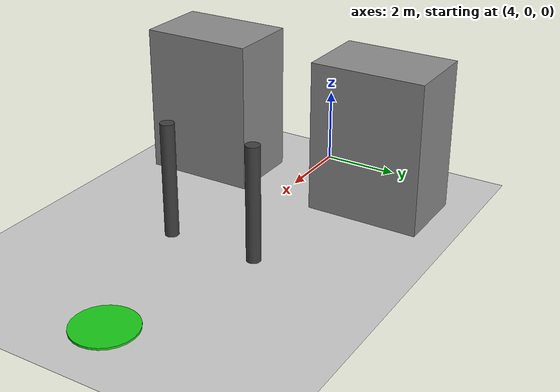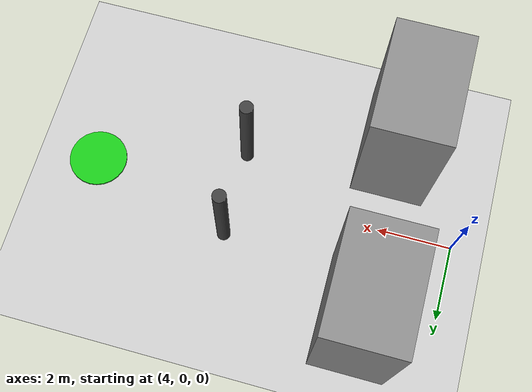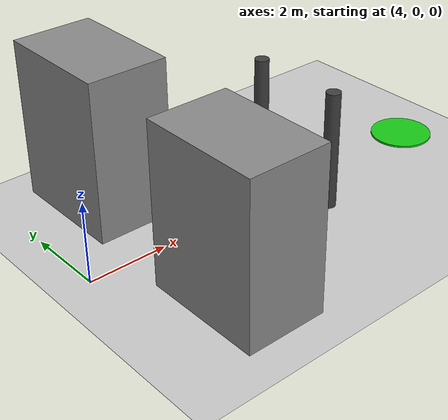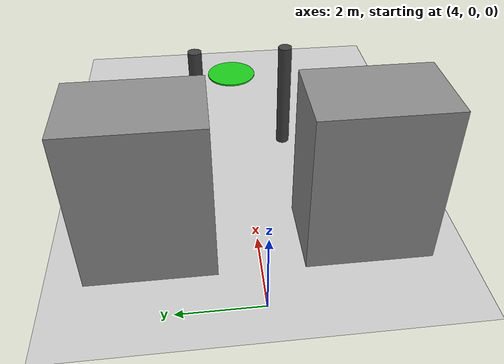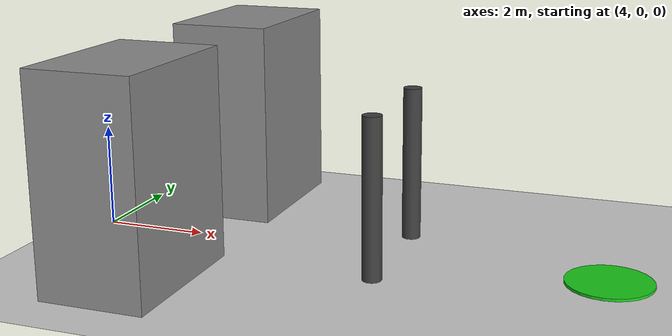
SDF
<?xml version="1.0" ?>
<sdf version="1.6">
  <world name="default">

    <include>
      <uri>model://sun</uri>
    </include>

    <include>
      <uri>model://ground_plane</uri>
    </include>

    <physics name="default_physics" default="0" type="ode">
      <gravity>0 0 -9.8066</gravity>
      <ode>
        <solver>
          <type>quick</type>
          <iters>10</iters>
          <sor>1.3</sor>
        </solver>
        <constraints>
          <cfm>0</cfm>
          <erp>0.2</erp>
          <contact_max_correcting_vel>100</contact_max_correcting_vel>
          <contact_surface_layer>0.001</contact_surface_layer>
        </constraints>
      </ode>
      <real_time_update_rate>250</real_time_update_rate>
      <max_step_size>0.004</max_step_size>
    </physics>

    <model name="building_left">
      <static>true</static>
      <pose>6 2.5 2.0 0 0 0</pose>
      <link name="link">
        <collision name="collision">
          <geometry>
            <box><size>2.0 3.0 4.0</size></box>
          </geometry>
        </collision>
        <visual name="visual">
          <geometry>
            <box><size>2.0 3.0 4.0</size></box>
          </geometry>
          <material>
            <ambient>0.45 0.45 0.45 1</ambient>
            <diffuse>0.55 0.55 0.55 1</diffuse>
          </material>
        </visual>
      </link>
    </model>

    <model name="building_right">
      <static>true</static>
      <pose>6 -2.5 2.0 0 0 0</pose>
      <link name="link">
        <collision name="collision">
          <geometry>
            <box><size>2.0 3.0 4.0</size></box>
          </geometry>
        </collision>
        <visual name="visual">
          <geometry>
            <box><size>2.0 3.0 4.0</size></box>
          </geometry>
          <material>
            <ambient>0.45 0.45 0.45 1</ambient>
            <diffuse>0.55 0.55 0.55 1</diffuse>
          </material>
        </visual>
      </link>
    </model>

    <model name="pole_1">
      <static>true</static>
      <pose>10 1.2 1.5 0 0 0</pose>
      <link name="link">
        <collision name="collision">
          <geometry>
            <cylinder>
              <radius>0.18</radius>
              <length>3.0</length>
            </cylinder>
          </geometry>
        </collision>
        <visual name="visual">
          <geometry>
            <cylinder>
              <radius>0.18</radius>
              <length>3.0</length>
            </cylinder>
          </geometry>
          <material>
            <ambient>0.2 0.2 0.2 1</ambient>
            <diffuse>0.25 0.25 0.25 1</diffuse>
          </material>
        </visual>
      </link>
    </model>

    <model name="pole_2">
      <static>true</static>
      <pose>10 -1.2 1.5 0 0 0</pose>
      <link name="link">
        <collision name="collision">
          <geometry>
            <cylinder>
              <radius>0.18</radius>
              <length>3.0</length>
            </cylinder>
          </geometry>
        </collision>
        <visual name="visual">
          <geometry>
            <cylinder>
              <radius>0.18</radius>
              <length>3.0</length>
            </cylinder>
          </geometry>
          <material>
            <ambient>0.2 0.2 0.2 1</ambient>
            <diffuse>0.25 0.25 0.25 1</diffuse>
          </material>
        </visual>
      </link>
    </model>

    <model name="delivery_pad">
      <static>true</static>
      <pose>14 0 0.025 0 0 0</pose>
      <link name="link">
        <collision name="collision">
          <geometry>
            <cylinder>
              <radius>0.8</radius>
              <length>0.05</length>
            </cylinder>
          </geometry>
        </collision>
        <visual name="visual">
          <geometry>
            <cylinder>
              <radius>0.8</radius>
              <length>0.05</length>
            </cylinder>
          </geometry>
          <material>
            <ambient>0.1 0.6 0.1 1</ambient>
            <diffuse>0.1 0.8 0.1 1</diffuse>
          </material>
        </visual>
      </link>
    </model>

  </world>
</sdf>
